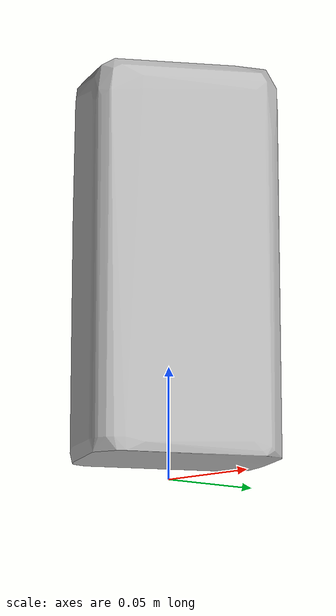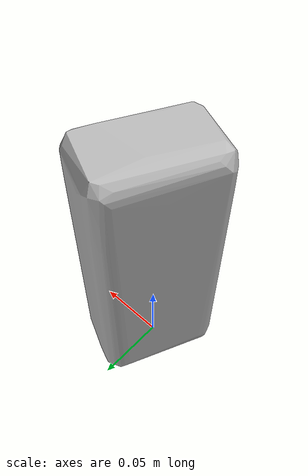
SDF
<?xml version='1.0'?>
<sdf version="1.4">
  <model name="canon_ack_e10_box">
    <static>false</static>
    <link name="link">
      <inertial>
        <pose>0.0050638095119359345 -0.0017624912220324505 0.08943973385349428 3.1381505235632656 -0.024781377214279872 2.684208437661448</pose>
        <mass>0.03819330686975427</mass>
        <inertia>
          <ixx>0.00028864289807023003</ixx>
          <ixy>-1.3476173560765013e-20</ixy>
          <ixz>1.1780549418390618e-20</ixz>
          <iyy>0.00026223711363290014</iyy>
          <iyz>1.1430668623751036e-20</iyz>
          <izz>8.381659645809014e-05</izz>
        </inertia>
      </inertial>
      <collision name="collision">
        <geometry>
          <mesh>
            <!-- Use a downsampled mesh for collisions -->
            <uri>model:///canon_ack_e10_box/canon_ack_e10_box_250_collision.obj</uri>
	        </mesh>
        </geometry>
        <surface>
      </surface>
      </collision>
      <visual name="visual">
        <geometry>
          <mesh>
            <uri>model:///canon_ack_e10_box/optimized_tsdf_texture_mapped_mesh.obj</uri>
	        </mesh>
        </geometry>
        <material>
          <script>
            <uri>model:///canon_ack_e10_box/canon_ack_e10_box.material</uri>
            <name>canon_ack_e10_box</name>
          </script>
        </material>
      </visual>
    </link>
  </model>
</sdf>
